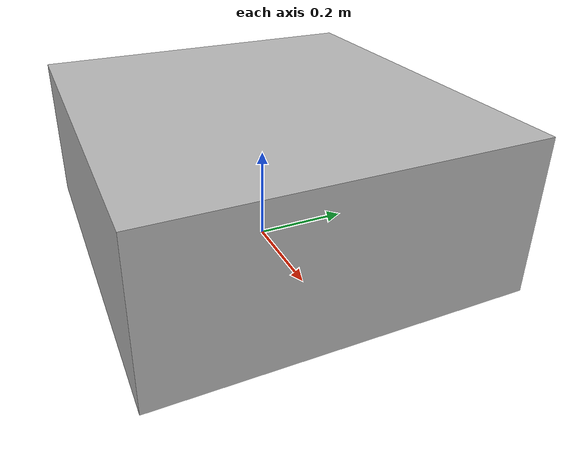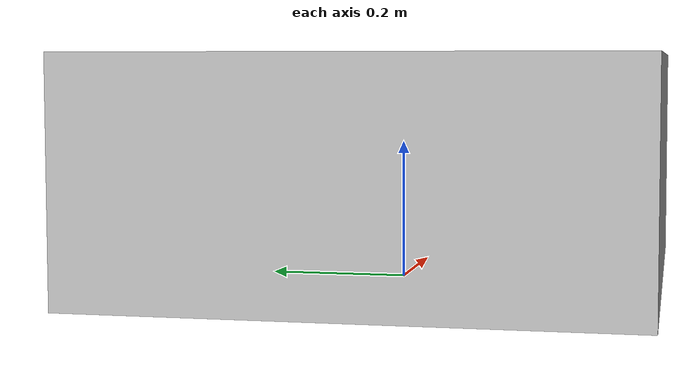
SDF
<?xml version="1.0"?>
<sdf version="1.6">
  <model name="rwc2017/foot_stool">
    <link name="1_link">
      <collision name="1_col">
        <geometry>
          <box>
            <size>0.8 0.76 0.33</size>
          </box>
        </geometry>
      </collision>
      <visual name="1_vis">
        <geometry>
          <box>
            <size>0.8 0.76 0.33</size>
          </box>
        </geometry>
      </visual>
      <pose>0 0 0.165 0 0 0</pose>
    </link>
    <link name="on_top_of">
      <virtual_volume name="on_top_of_vv">
        <geometry>
          <box>
            <size>0.74 0.7 0.25</size>
          </box>
        </geometry>
        <pose>0.0 0.0 0.475 0 0 0</pose>
      </virtual_volume>
    </link>
    <link name="in_front_of">
      <virtual_volume name="in_front_of_vv">
        <geometry>
          <box>
            <size>0.8 0.4 0.01</size>
          </box>
        </geometry>
        <pose>0.0 0.9 0.005 0 0 0</pose>
      </virtual_volume>
    </link>
    <static>true</static>
  </model>
</sdf>
